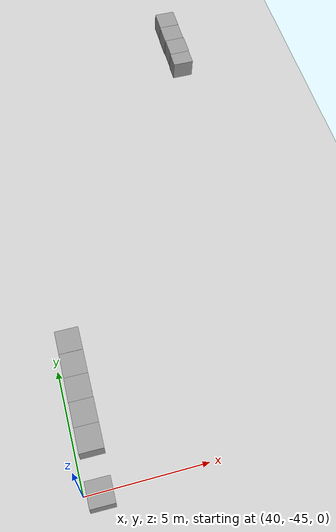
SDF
<sdf version="1.7">
 <world name="default">
  <model name="ground_plane">
   <static>1</static>
   <link name="link">
    <collision name="collision">
     <geometry><plane><normal>0 0 1</normal><size>100 100</size></plane></geometry>
     <surface>
      <contact><collide_bitmask>65535</collide_bitmask></contact>
      <friction><ode><mu>100</mu><mu2>50</mu2></ode></friction>
     </surface>
    </collision>
    <visual name="visual">
     <cast_shadows>0</cast_shadows>
     <geometry><plane><normal>0 0 1</normal><size>100 100</size></plane></geometry>
     <material>
      <script><uri>file://media/materials/scripts/gazebo.material</uri><name>Gazebo/Grey</name></script>
     </material>
    </visual>
   </link>
  </model>
  <model name="unit_box_38">
   <static>1</static>
   <pose>49.5909 -22.4936 0.499995 1e-05 -0 -0.001789</pose>
   <link name="link">
    <inertial>
     <mass>1</mass>
     <inertia>
      <ixx>0.166667</ixx>
      <ixy>0</ixy>
      <ixz>0</ixz>
      <iyy>0.166667</iyy>
      <iyz>0</iyz>
      <izz>0.166667</izz>
     </inertia>
    </inertial>
    <collision name="collision"><geometry><box><size>1 1 1</size></box></geometry></collision>
    <visual name="visual">
     <geometry><box><size>1 1 1</size></box></geometry>
     <material>
      <script><name>Gazebo/Grey</name><uri>file://media/materials/scripts/gazebo.material</uri></script>
     </material>
    </visual>
   </link>
  </model>
  <model name="unit_box_39">
   <static>1</static>
   <pose>49.5773 -23.494 0.499995 1e-05 -0 -0.001144</pose>
   <link name="link">
    <inertial>
     <mass>1</mass>
     <inertia>
      <ixx>0.166667</ixx>
      <ixy>0</ixy>
      <ixz>0</ixz>
      <iyy>0.166667</iyy>
      <iyz>0</iyz>
      <izz>0.166667</izz>
     </inertia>
    </inertial>
    <collision name="collision"><geometry><box><size>1 1 1</size></box></geometry></collision>
    <visual name="visual">
     <geometry><box><size>1 1 1</size></box></geometry>
     <material>
      <script><name>Gazebo/Grey</name><uri>file://media/materials/scripts/gazebo.material</uri></script>
     </material>
    </visual>
   </link>
  </model>
  <model name="unit_box_40">
   <static>1</static>
   <pose>49.6001 -24.495 0.499995 1e-05 0 -0.000304</pose>
   <link name="link">
    <inertial>
     <mass>1</mass>
     <inertia>
      <ixx>0.166667</ixx>
      <ixy>0</ixy>
      <ixz>0</ixz>
      <iyy>0.166667</iyy>
      <iyz>0</iyz>
      <izz>0.166667</izz>
     </inertia>
    </inertial>
    <collision name="collision"><geometry><box><size>1 1 1</size></box></geometry></collision>
    <visual name="visual">
     <geometry><box><size>1 1 1</size></box></geometry>
     <material>
      <script><name>Gazebo/Grey</name><uri>file://media/materials/scripts/gazebo.material</uri></script>
     </material>
    </visual>
   </link>
  </model>
  <model name="unit_box_41">
   <static>1</static>
   <pose>49.5785 -25.3795 0.499995 0 1e-05 -0.000123</pose>
   <link name="link">
    <inertial>
     <mass>1</mass>
     <inertia>
      <ixx>0.166667</ixx>
      <ixy>0</ixy>
      <ixz>0</ixz>
      <iyy>0.166667</iyy>
      <iyz>0</iyz>
      <izz>0.166667</izz>
     </inertia>
    </inertial>
    <collision name="collision"><geometry><box><size>1 0.7685 1</size></box></geometry></collision>
    <visual name="visual">
     <geometry><box><size>1 0.7685 1</size></box></geometry>
     <material>
      <script><name>Gazebo/Grey</name><uri>file://media/materials/scripts/gazebo.material</uri></script>
     </material>
    </visual>
   </link>
  </model>
  <model name="unit_box_4">
   <static>1</static>
   <pose>40.708 -39.1313 0.499995 0 -1e-05 -0.005944</pose>
   <link name="link">
    <inertial>
     <mass>1</mass>
     <inertia>
      <ixx>0.166667</ixx>
      <ixy>0</ixy>
      <ixz>0</ixz>
      <iyy>0.166667</iyy>
      <iyz>0</iyz>
      <izz>0.166667</izz>
     </inertia>
    </inertial>
    <collision name="collision"><geometry><box><size>1 1 1</size></box></geometry></collision>
    <visual name="visual">
     <geometry><box><size>1 1 1</size></box></geometry>
     <material>
      <script><name>Gazebo/Grey</name><uri>file://media/materials/scripts/gazebo.material</uri></script>
     </material>
    </visual>
   </link>
  </model>
  <model name="unit_box_12">
   <static>1</static>
   <pose>40.6989 -40.1348 0.5 0 0 -0.01305</pose>
   <link name="link">
    <inertial>
     <mass>1</mass>
     <inertia>
      <ixx>0.166667</ixx>
      <ixy>0</ixy>
      <ixz>0</ixz>
      <iyy>0.166667</iyy>
      <iyz>0</iyz>
      <izz>0.166667</izz>
     </inertia>
    </inertial>
    <collision name="collision"><geometry><box><size>1 1 1</size></box></geometry></collision>
    <visual name="visual">
     <geometry><box><size>1 1 1</size></box></geometry>
     <material>
      <script><name>Gazebo/Grey</name><uri>file://media/materials/scripts/gazebo.material</uri></script>
     </material>
    </visual>
   </link>
  </model>
  <model name="unit_box_23">
   <static>1</static>
   <pose>40.6893 -41.1348 0.499995 -0 1e-05 -0.013091</pose>
   <link name="link">
    <inertial>
     <mass>1</mass>
     <inertia>
      <ixx>0.166667</ixx>
      <ixy>0</ixy>
      <ixz>0</ixz>
      <iyy>0.166667</iyy>
      <iyz>0</iyz>
      <izz>0.166667</izz>
     </inertia>
    </inertial>
    <collision name="collision"><geometry><box><size>1 1 1</size></box></geometry></collision>
    <visual name="visual">
     <geometry><box><size>1 1 1</size></box></geometry>
     <material>
      <script><name>Gazebo/Grey</name><uri>file://media/materials/scripts/gazebo.material</uri></script>
     </material>
    </visual>
   </link>
  </model>
  <model name="unit_box_30">
   <static>1</static>
   <pose>40.6861 -42.135 0.499995 1e-05 -0 -0.013398</pose>
   <link name="link">
    <inertial>
     <mass>1</mass>
     <inertia>
      <ixx>0.166667</ixx>
      <ixy>0</ixy>
      <ixz>0</ixz>
      <iyy>0.166667</iyy>
      <iyz>0</iyz>
      <izz>0.166667</izz>
     </inertia>
    </inertial>
    <collision name="collision"><geometry><box><size>1 1 1</size></box></geometry></collision>
    <visual name="visual">
     <geometry><box><size>1 1 1</size></box></geometry>
     <material>
      <script><name>Gazebo/Grey</name><uri>file://media/materials/scripts/gazebo.material</uri></script>
     </material>
    </visual>
   </link>
  </model>
  <model name="unit_box_31">
   <static>1</static>
   <pose>40.6768 -43.135 0.499995 -1e-05 0 -0.013497</pose>
   <link name="link">
    <inertial>
     <mass>1</mass>
     <inertia>
      <ixx>0.166667</ixx>
      <ixy>0</ixy>
      <ixz>0</ixz>
      <iyy>0.166667</iyy>
      <iyz>0</iyz>
      <izz>0.166667</izz>
     </inertia>
    </inertial>
    <collision name="collision"><geometry><box><size>1 1 1</size></box></geometry></collision>
    <visual name="visual">
     <geometry><box><size>1 1 1</size></box></geometry>
     <material>
      <script><name>Gazebo/Grey</name><uri>file://media/materials/scripts/gazebo.material</uri></script>
     </material>
    </visual>
   </link>
  </model>
  <model name="unit_box_32">
   <static>1</static>
   <pose>40.6551 -45.1356 0.499995 -1e-05 -0 -0.014879</pose>
   <link name="link">
    <inertial>
     <mass>1</mass>
     <inertia>
      <ixx>0.166667</ixx>
      <ixy>0</ixy>
      <ixz>0</ixz>
      <iyy>0.166667</iyy>
      <iyz>0</iyz>
      <izz>0.166667</izz>
     </inertia>
    </inertial>
    <collision name="collision"><geometry><box><size>1 1 1</size></box></geometry></collision>
    <visual name="visual">
     <geometry><box><size>1 1 1</size></box></geometry>
     <material>
      <script><name>Gazebo/Grey</name><uri>file://media/materials/scripts/gazebo.material</uri></script>
     </material>
    </visual>
   </link>
  </model>
 </world>
</sdf>
